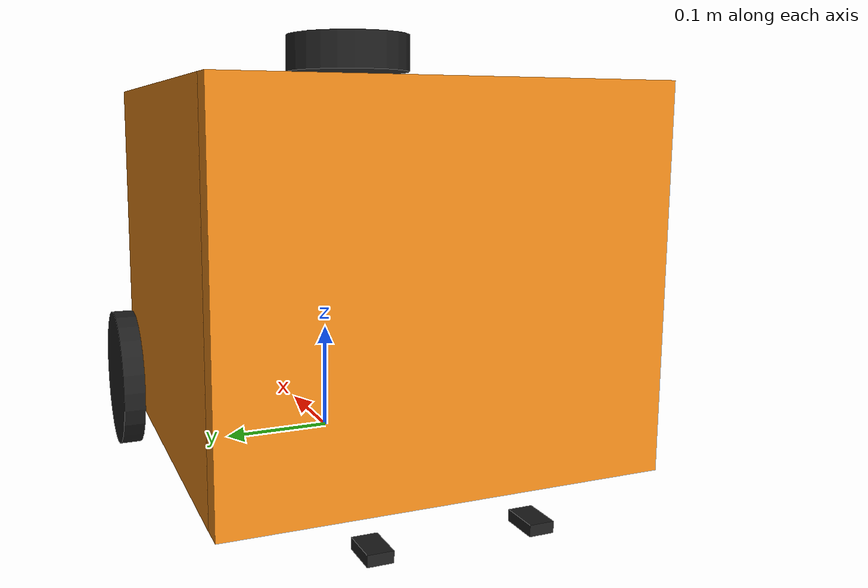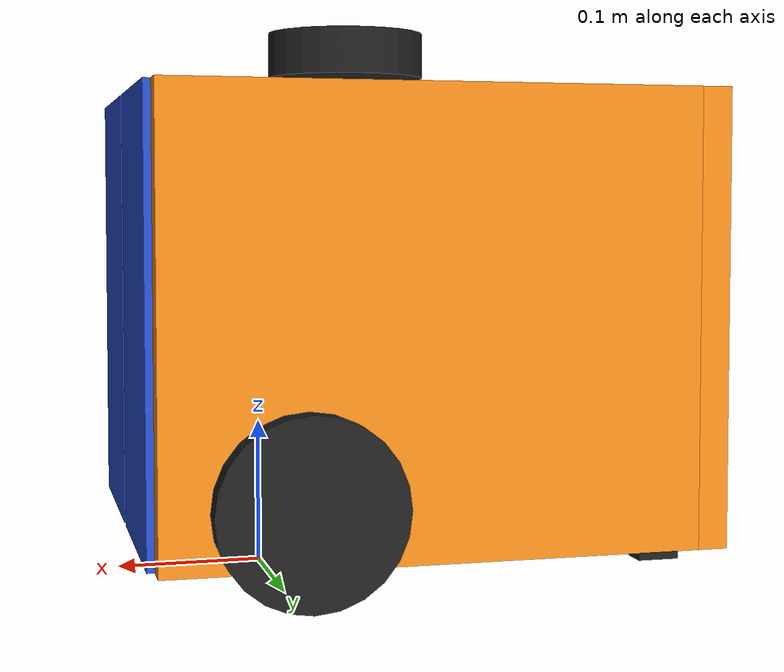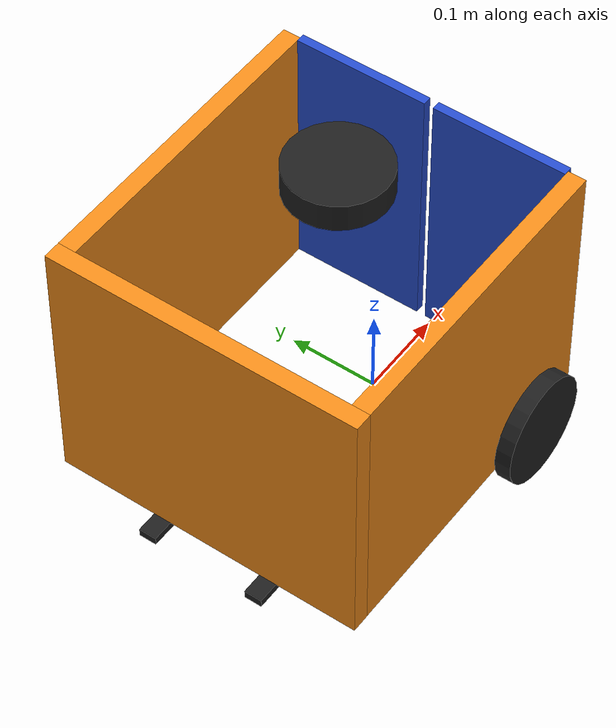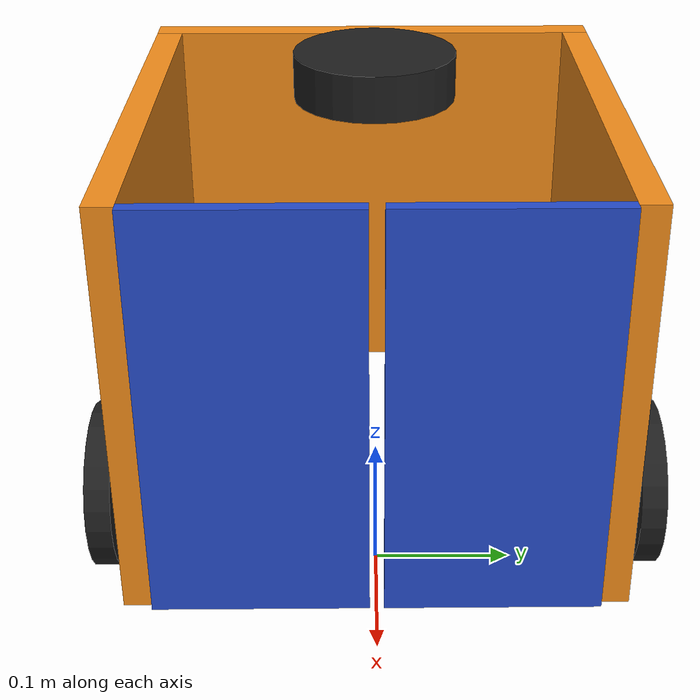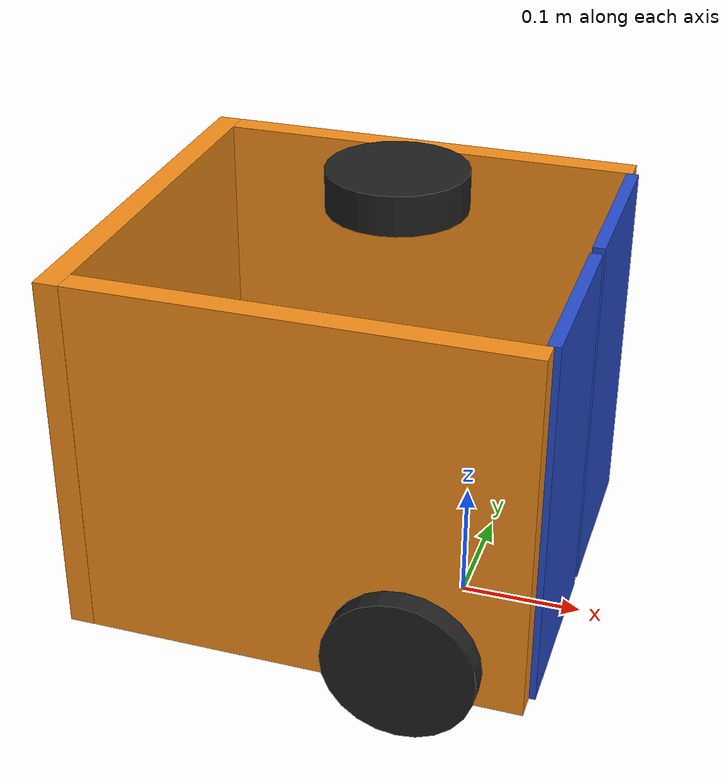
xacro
<?xml version="1.0" ?>
<robot name="myrover" xmlns:xacro="http://ros.org/wiki/xacro">

  <xacro:include filename="$(find snatcher)/urdf/colors.xacro"/>
  <xacro:include filename="$(find snatcher)/urdf/snatcher.gazebo.xacro"/>

  <link name="base_footprint"/>

  <joint name="base_joint" type="fixed">
    <parent link="base_footprint"/>
    <child link="base_link" />
    <origin xyz="0 0 0.010" rpy="0 0 0"/>
  </joint>

  <link name="base_link">
	<visual>
      <origin xyz="-0.27 0 0.17" rpy="0 0 0"/>
      <geometry>
        <box size="0.02 0.35 0.3"/>
      </geometry>
      <material name="orange"/>
    </visual>
    <visual>
      <origin xyz="-0.085 0.165 0.17" rpy="0 0 1.57"/>
      <geometry>
        <box size="0.02 0.35 0.3"/>
      </geometry>
      <material name="orange"/>
    </visual>
    <visual>
      <origin xyz="-0.085 -0.165 0.17" rpy="0 0 1.57"/>
      <geometry>
        <box size="0.02 0.35 0.3"/>
      </geometry>
      <material name="orange"/>
    </visual>

    <collision>
      <origin xyz="-0.27 0 0.17" rpy="0 0 0"/>
      <geometry>
        <box size="0.02 0.35 0.3"/>
      </geometry>
      <material name="orange"/>
    </collision>
    <collision>
      <origin xyz="-0.085 0.165 0.17" rpy="0 0 1.57"/>
      <geometry>
        <box size="0.02 0.35 0.3"/>
      </geometry>
      <material name="orange"/>
    </collision>
    <collision>
      <origin xyz="-0.085 -0.165 0.17" rpy="0 0 1.57"/>
      <geometry>
        <box size="0.02 0.35 0.3"/>
      </geometry>
      <material name="orange"/>
    </collision>

    <inertial>
      <origin xyz="0 0 0" rpy="0 0 0"/>
      <mass value="2"/>
      <inertia ixx="0.035416666666667" ixy="0" ixz="0"
               iyy="0.035416666666667" iyz="0"
               izz="0.040833333333333" />
    </inertial>
  </link>

  <joint name="wheel_left_joint" type="continuous">
    <parent link="base_link"/>
    <child link="wheel_left_link"/>
    <origin xyz="0.0 0.194 0.06" rpy="-1.57 0 0"/>
    <axis xyz="0 0 1"/>
  </joint>

  <link name="wheel_left_link">
    <visual>
      <origin xyz="0 0 0" rpy="0 0 0"/>
      <geometry>
        <cylinder length="0.018" radius="0.06"/>
      </geometry>
      <material name="dark"/>
    </visual>

    <collision>
      <origin xyz="0 0 0" rpy="0 0 0"/>
      <geometry>
        <cylinder length="0.018" radius="0.06"/>
      </geometry>
    </collision>

    <inertial>
      <origin xyz="0 0 0" />
      <mass value="2.8498940e-02" />
      <inertia ixx="1.1175580e-05" ixy="-4.2369783e-11" ixz="-5.9381719e-09"
               iyy="1.1192413e-05" iyz="-1.4400107e-11"
               izz="2.0712558e-05" />
      </inertial>
  </link>

  <joint name="wheel_right_joint" type="continuous">
    <parent link="base_link"/>
    <child link="wheel_right_link"/>
    <origin xyz="0.0 -0.194 0.06" rpy="-1.57 0 0"/>
    <axis xyz="0 0 1"/>
  </joint>

  <link name="wheel_right_link">
    <visual>
      <origin xyz="0 0 0" rpy="0 0 0"/>
      <geometry>
        <cylinder length="0.018" radius="0.06"/>
      </geometry>
      <material name="dark"/>
    </visual>

    <collision>
      <origin xyz="0 0 0" rpy="0 0 0"/>
      <geometry>
        <cylinder length="0.018" radius="0.06"/>
      </geometry>
    </collision>

    <inertial>
      <origin xyz="0 0 0" />
      <mass value="2.8498940e-02" />
      <inertia ixx="1.1175580e-05" ixy="-4.2369783e-11" ixz="-5.9381719e-09"
               iyy="1.1192413e-05" iyz="-1.4400107e-11"
               izz="2.0712558e-05" />
      </inertial>
  </link>

  <joint name="caster_back_right_joint" type="fixed">
    <parent link="base_link"/>
    <child link="caster_back_right_link"/>
    <origin xyz="-0.277 -0.064 -0.004" rpy="-1.57 0 0"/>
  </joint>

  <link name="caster_back_right_link">
    <collision>
      <origin xyz="0 0.001 0" rpy="0 0 0"/>
      <geometry>
        <box size="0.030 0.009 0.020"/>
      </geometry>
    </collision>

	<visual>
      <origin xyz="0 0.001 0" rpy="0 0 0"/>
      <geometry>
        <box size="0.030 0.009 0.020"/>
      </geometry>
    </visual>

    <inertial>
      <origin xyz="0 0 0" />
      <mass value="0.005" />
      <inertia ixx="0.001" ixy="0.0" ixz="0.0"
               iyy="0.001" iyz="0.0"
               izz="0.001" />
    </inertial>
  </link>

  <joint name="caster_back_left_joint" type="fixed">
    <parent link="base_link"/>
    <child link="caster_back_left_link"/>
    <origin xyz="-0.277 0.064 -0.004" rpy="-1.57 0 0"/>
  </joint>

  <link name="caster_back_left_link">
    <collision>
      <origin xyz="0 0.001 0" rpy="0 0 0"/>
      <geometry>
        <box size="0.030 0.009 0.020"/>
      </geometry>
    </collision>

	<visual>
      <origin xyz="0 0.001 0" rpy="0 0 0"/>
      <geometry>
        <box size="0.030 0.009 0.020"/>
      </geometry>
    </visual>

    <inertial>
      <origin xyz="0 0 0" />
      <mass value="0.005" />
      <inertia ixx="0.001" ixy="0.0" ixz="0.0"
               iyy="0.001" iyz="0.0"
               izz="0.001" />
    </inertial>
  </link>

  <link name="base_scan">
    <visual>
      <origin xyz="0 0 0" rpy="0 0 0"/>
      <geometry>
        <cylinder length="0.0315" radius="0.055"/>
      </geometry>
      <material name="dark"/>
    </visual>

    <collision>
      <origin xyz="0.015 0 -0.0065" rpy="0 0 0"/>
      <geometry>
        <cylinder length="0.0315" radius="0.055"/>
      </geometry>
    </collision>

    <inertial>
      <mass value="0.114" />
      <origin xyz="0 0 0" />
      <inertia ixx="0.001" ixy="0.0" ixz="0.0"
               iyy="0.001" iyz="0.0"
               izz="0.001" />
    </inertial>
  </link>

  <joint name="scan_joint" type="fixed">
    <parent link="base_link"/>
    <child link="base_scan"/>
    <origin xyz="-0.064 0 0.35" rpy="0 0 0"/>
  </joint>

<link name="left_door">
		<visual>
		  <origin xyz="0 -0.08 0" rpy="0 0 0"/>
		  <geometry>
		    <box size="0.01 0.15 0.3"/>
		  </geometry>
		  <material name="blue"/>
		</visual>

		<collision>
		  <origin xyz="0 -0.08 0" rpy="0 0 0"/>
		  <geometry>
		    <box size="0.01 0.15 0.3"/>
		  </geometry>
		  <material name="blue"/>
		</collision>

		<inertial>
		  <origin xyz="-0.1 -0.04 0" rpy="0 0 0"/>
	    <mass value="0.1"/>
	    <inertia ixx="0.035416666666667" ixy="0" ixz="0"
	  		       iyy="0.035416666666667" iyz="0"
		  	       izz="0.040833333333333" />
    	</inertial>
	</link>

	<joint name="left_door_joint" type="revolute">
	  <origin xyz="0.09 0.16 0.17" rpy="0 0 0" />
		<parent link="base_link" />
		<child link="left_door" />
		<axis	xyz="0 0 1" />
		<limit lower="0" upper="1.57" effort="2" velocity="2.0" />
	</joint>

	<link name="right_door">
		<visual>
		  <origin xyz="0 0.08 0" rpy="0 0 0"/>
		  <geometry>
		    <box size="0.01 0.15 0.3"/>
		  </geometry>
		  <material name="blue"/>
		</visual>

		<collision>
		  <origin xyz="0 0.08 0" rpy="0 0 0"/>
		  <geometry>
		    <box size="0.01 0.15 0.3"/>
		  </geometry>
		  <material name="blue"/>
		</collision>

		<inertial>
		  <origin xyz="-0.1 -0.04 0" rpy="0 0 0"/>
	    <mass value="0.1"/>
	    <inertia ixx="0.0002" ixy="0" ixz="0"
	  		       iyy="0.0004" iyz="0"
		  	       izz="0.0002" />
    	</inertial>
	</link>

	<joint name="right_door_joint" type="revolute">
	  <origin xyz="0.09 -0.16 0.17" rpy="0 0 0" />
		<parent link="base_link" />
		<child link="right_door" />
		<axis	xyz="0 0 1" />
		<limit lower="-1.57" upper="0" effort="2" velocity="2.0" />
	</joint>

</robot>
